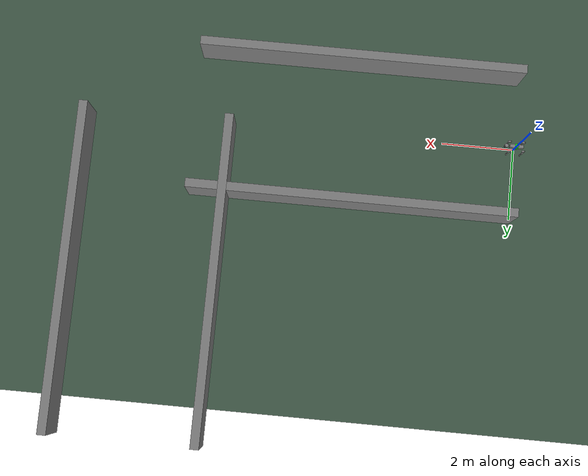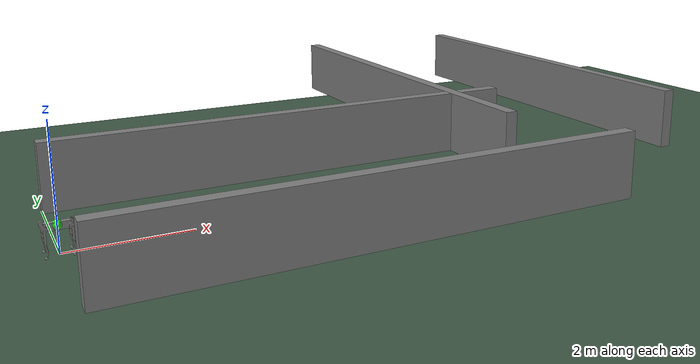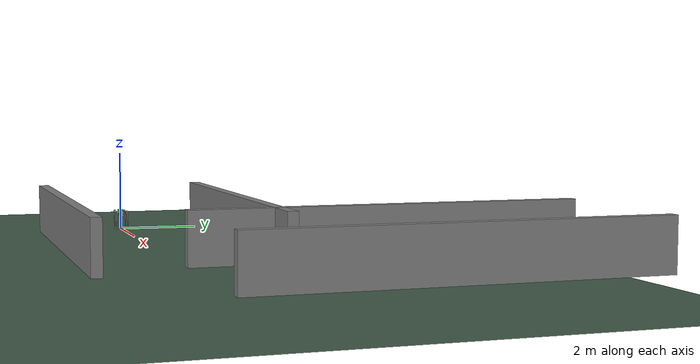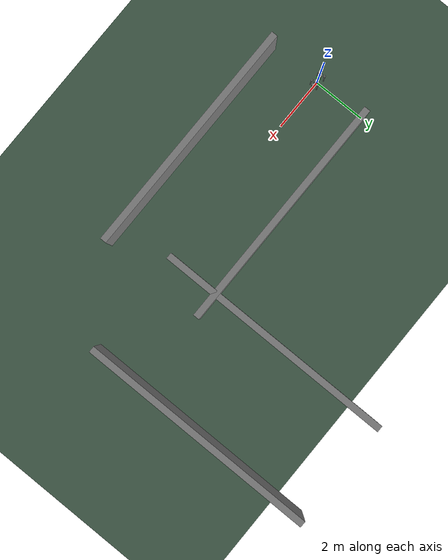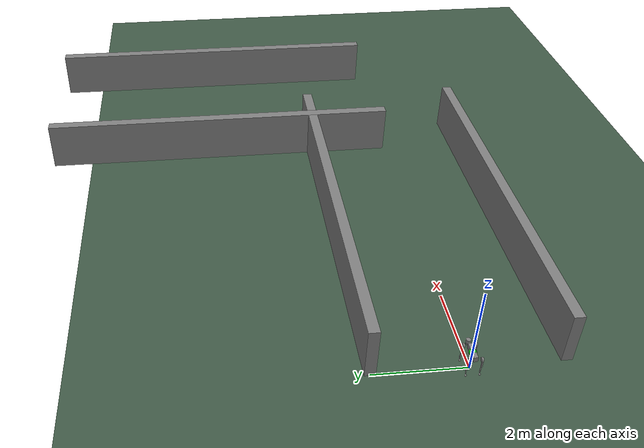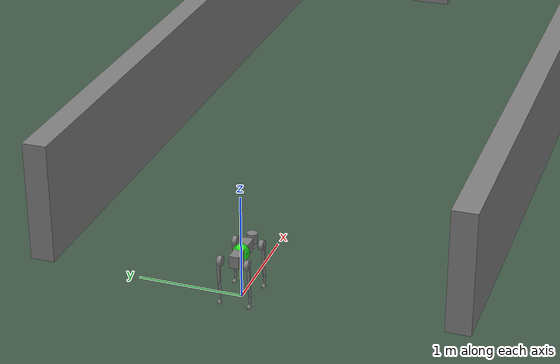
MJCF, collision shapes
<mujoco model="sea-nav winding flat turn">
  <include file="go2.xml"/>
  <option timestep="0.002" gravity="0 0 -9.81"/>
  <statistic center="10 0 0.5" extent="12"/>
  <visual>
    <headlight diffuse="0.6 0.6 0.6" ambient="0.3 0.3 0.3" specular="0.9 0.9 0.9"/>
    <rgba haze="0.15 0.25 0.35 1"/>
    <global azimuth="-130" elevation="-20"/>
  </visual>
  <asset>
    <texture type="skybox" builtin="gradient" rgb1="0.4 0.6 0.8" rgb2="0.1 0.1 0.1" width="512" height="3072"/>
    <material name="floor" rgba="0.25 0.35 0.28 1"/>
  </asset>
  <worldbody>
    <light pos="4 -4 8" dir="-0.2 0.2 -1" directional="true" diffuse="0.8 0.8 0.8" specular="0.4 0.4 0.4"/>
    <site name="winding_spawn" pos="0 0 .45" size=".08" rgba="0.1 1 0.1 0.8"/>
    <geom name="floor" type="plane" size="30 8 .05" material="floor"/>

    <!-- Geometry matches course_winding.xml; only the hfield is removed. -->
    <geom name="wall_h_left" type="box" pos="4.5 2.0 .6" size="4.5 .12 .6"/>
    <geom name="wall_h_right" type="box" pos="4.5 -2.0 .6" size="4.5 .12 .6"/>
    <geom name="wall_v_left" type="box" pos="8.0 4.5 .6" size=".12 4.5 .6"/>
    <geom name="wall_v_right" type="box" pos="12.0 4.5 .6" size=".12 4.5 .6"/>

  </worldbody>
</mujoco>

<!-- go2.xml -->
<mujoco model="go2">
  <compiler angle="radian" meshdir="assets" autolimits="true"/>

  <option cone="elliptic" impratio="100"/>

  <default>
    <default class="go2">
      <geom friction="0.6" margin="0.001" condim="1"/>
      <joint axis="0 1 0" damping="2" armature="0.01" frictionloss="0.2"/>
      <position kp="25" kv="0.5" ctrlrange="-23.7 23.7"/>
      <default class="abduction">
        <joint axis="1 0 0" range="-1.0472 1.0472"/>
      </default>
      <default class="hip">
        <default class="front_hip">
          <joint range="-1.5708 3.4907"/>
        </default>
        <default class="back_hip">
          <joint range="-0.5236 4.5379"/>
        </default>
      </default>
      <default class="knee">
        <joint range="-2.7227 -0.83776"/>
        <position kp="25" kv="0.5" ctrlrange="-45.43 45.43"/>
      </default>
      <default class="visual">
        <geom type="mesh" contype="0" conaffinity="0" group="2"/>
      </default>
      <default class="collision">
        <geom group="3"/>
        <default class="foot">
          <geom size="0.022" pos="-0.002 0 -0.213" priority="1" solimp="0.015 1 0.022" condim="6"
            friction="0.8 0.02 0.01"/>
        </default>
      </default>
    </default>
  </default>

  <asset>
    <material name="metal" rgba=".9 .95 .95 1"/>
    <material name="black" rgba="0 0 0 1"/>
    <material name="white" rgba="1 1 1 1"/>
    <material name="gray" rgba="0.671705 0.692426 0.774270 1"/>

    <mesh file="base_0.obj"/>
    <mesh file="base_1.obj"/>
    <mesh file="base_2.obj"/>
    <mesh file="base_3.obj"/>
    <mesh file="base_4.obj"/>
    <mesh file="hip_0.obj"/>
    <mesh file="hip_1.obj"/>
    <mesh file="thigh_0.obj"/>
    <mesh file="thigh_1.obj"/>
    <mesh file="thigh_mirror_0.obj"/>
    <mesh file="thigh_mirror_1.obj"/>
    <mesh file="calf_0.obj"/>
    <mesh file="calf_1.obj"/>
    <mesh file="calf_mirror_0.obj"/>
    <mesh file="calf_mirror_1.obj"/>
    <mesh file="foot.obj"/>
  </asset>

  <worldbody>
    <body name="base" pos="0 0 0.445" childclass="go2">
      <inertial pos="0.021112 0 -0.005366" quat="-0.000543471 0.713435 -0.00173769 0.700719" mass="6.921"
        diaginertia="0.107027 0.0980771 0.0244531"/>
      <freejoint/>
      <geom mesh="base_0" material="black" class="visual"/>
      <geom mesh="base_1" material="black" class="visual"/>
      <geom mesh="base_2" material="black" class="visual"/>
      <geom mesh="base_3" material="white" class="visual"/>
      <geom mesh="base_4" material="gray" class="visual"/>
      <geom size="0.1881 0.04675 0.057" type="box" class="collision"/>
      <geom size="0.05 0.045" pos="0.285 0 0.01" type="cylinder" class="collision"/>
      <geom size="0.047" pos="0.293 0 -0.06" class="collision"/>
      <site name="imu" pos="-0.02557 0 0.04232"/>
      <body name="FL_hip" pos="0.1934 0.0465 0">
        <inertial pos="-0.0054 0.00194 -0.000105" quat="0.497014 0.499245 0.505462 0.498237" mass="0.678"
          diaginertia="0.00088403 0.000596003 0.000479967"/>
        <joint name="FL_hip_joint" class="abduction"/>
        <geom mesh="hip_0" material="metal" class="visual"/>
        <geom mesh="hip_1" material="gray" class="visual"/>
        <geom size="0.046 0.02" pos="0 0.08 0" quat="1 1 0 0" type="cylinder" class="collision"/>
        <body name="FL_thigh" pos="0 0.0955 0">
          <inertial pos="-0.00374 -0.0223 -0.0327" quat="0.829533 0.0847635 -0.0200632 0.551623" mass="1.152"
            diaginertia="0.00594973 0.00584149 0.000878787"/>
          <joint name="FL_thigh_joint" class="front_hip"/>
          <geom mesh="thigh_0" material="metal" class="visual"/>
          <geom mesh="thigh_1" material="gray" class="visual"/>
          <geom size="0.1065 0.01225 0.017" pos="0 0 -0.1065" quat="0.707107 0 0.707107 0" type="box" class="collision"/>
          <body name="FL_calf" pos="0 0 -0.213">
            <inertial pos="0.00629595 -0.000622121 -0.141417" quat="0.710672 0.00154099 -0.00450087 0.703508"
              mass="0.241352" diaginertia="0.0014901 0.00146356 5.31397e-05"/>
            <joint name="FL_calf_joint" class="knee"/>
            <geom mesh="calf_0" material="gray" class="visual"/>
            <geom mesh="calf_1" material="black" class="visual"/>
            <geom size="0.012 0.06" pos="0.008 0 -0.06" quat="0.994493 0 -0.104807 0" type="cylinder" class="collision"/>
            <geom size="0.011 0.0325" pos="0.02 0 -0.148" quat="0.999688 0 0.0249974 0" type="cylinder" class="collision"/>
            <geom pos="0 0 -0.213" mesh="foot" class="visual" material="black"/>
            <geom name="FL" class="foot"/>
          </body>
        </body>
      </body>
      <body name="FR_hip" pos="0.1934 -0.0465 0">
        <inertial pos="-0.0054 -0.00194 -0.000105" quat="0.498237 0.505462 0.499245 0.497014" mass="0.678"
          diaginertia="0.00088403 0.000596003 0.000479967"/>
        <joint name="FR_hip_joint" class="abduction"/>
        <geom mesh="hip_0" material="metal" class="visual" quat="4.63268e-05 1 0 0"/>
        <geom mesh="hip_1" material="gray" class="visual" quat="4.63268e-05 1 0 0"/>
        <geom size="0.046 0.02" pos="0 -0.08 0" quat="0.707107 0.707107 0 0" type="cylinder" class="collision"/>
        <body name="FR_thigh" pos="0 -0.0955 0">
          <inertial pos="-0.00374 0.0223 -0.0327" quat="0.551623 -0.0200632 0.0847635 0.829533" mass="1.152"
            diaginertia="0.00594973 0.00584149 0.000878787"/>
          <joint name="FR_thigh_joint" class="front_hip"/>
          <geom mesh="thigh_mirror_0" material="metal" class="visual"/>
          <geom mesh="thigh_mirror_1" material="gray" class="visual"/>
          <geom size="0.1065 0.01225 0.017" pos="0 0 -0.1065" quat="0.707107 0 0.707107 0" type="box" class="collision"/>
          <body name="FR_calf" pos="0 0 -0.213">
            <inertial pos="0.00629595 0.000622121 -0.141417" quat="0.703508 -0.00450087 0.00154099 0.710672"
              mass="0.241352" diaginertia="0.0014901 0.00146356 5.31397e-05"/>
            <joint name="FR_calf_joint" class="knee"/>
            <geom mesh="calf_mirror_0" material="gray" class="visual"/>
            <geom mesh="calf_mirror_1" material="black" class="visual"/>
            <geom size="0.013 0.06" pos="0.01 0 -0.06" quat="0.995004 0 -0.0998334 0" type="cylinder" class="collision"/>
            <geom size="0.011 0.0325" pos="0.02 0 -0.148" quat="0.999688 0 0.0249974 0" type="cylinder" class="collision"/>
            <geom pos="0 0 -0.213" mesh="foot" class="visual" material="black"/>
            <geom name="FR" class="foot"/>
          </body>
        </body>
      </body>
      <body name="RL_hip" pos="-0.1934 0.0465 0">
        <inertial pos="0.0054 0.00194 -0.000105" quat="0.505462 0.498237 0.497014 0.499245" mass="0.678"
          diaginertia="0.00088403 0.000596003 0.000479967"/>
        <joint name="RL_hip_joint" class="abduction"/>
        <geom mesh="hip_0" material="metal" class="visual" quat="4.63268e-05 0 1 0"/>
        <geom mesh="hip_1" material="gray" class="visual" quat="4.63268e-05 0 1 0"/>
        <geom size="0.046 0.02" pos="0 0.08 0" quat="0.707107 0.707107 0 0" type="cylinder" class="collision"/>
        <body name="RL_thigh" pos="0 0.0955 0">
          <inertial pos="-0.00374 -0.0223 -0.0327" quat="0.829533 0.0847635 -0.0200632 0.551623" mass="1.152"
            diaginertia="0.00594973 0.00584149 0.000878787"/>
          <joint name="RL_thigh_joint" class="back_hip"/>
          <geom mesh="thigh_0" material="metal" class="visual"/>
          <geom mesh="thigh_1" material="gray" class="visual"/>
          <geom size="0.1065 0.01225 0.017" pos="0 0 -0.1065" quat="0.707107 0 0.707107 0" type="box" class="collision"/>
          <body name="RL_calf" pos="0 0 -0.213">
            <inertial pos="0.00629595 -0.000622121 -0.141417" quat="0.710672 0.00154099 -0.00450087 0.703508"
              mass="0.241352" diaginertia="0.0014901 0.00146356 5.31397e-05"/>
            <joint name="RL_calf_joint" class="knee"/>
            <geom mesh="calf_0" material="gray" class="visual"/>
            <geom mesh="calf_1" material="black" class="visual"/>
            <geom size="0.013 0.06" pos="0.01 0 -0.06" quat="0.995004 0 -0.0998334 0" type="cylinder" class="collision"/>
            <geom size="0.011 0.0325" pos="0.02 0 -0.148" quat="0.999688 0 0.0249974 0" type="cylinder" class="collision"/>
            <geom pos="0 0 -0.213" mesh="foot" class="visual" material="black"/>
            <geom name="RL" class="foot"/>
          </body>
        </body>
      </body>
      <body name="RR_hip" pos="-0.1934 -0.0465 0">
        <inertial pos="0.0054 -0.00194 -0.000105" quat="0.499245 0.497014 0.498237 0.505462" mass="0.678"
          diaginertia="0.00088403 0.000596003 0.000479967"/>
        <joint name="RR_hip_joint" class="abduction"/>
        <geom mesh="hip_0" material="metal" class="visual" quat="2.14617e-09 4.63268e-05 4.63268e-05 -1"/>
        <geom mesh="hip_1" material="gray" class="visual" quat="2.14617e-09 4.63268e-05 4.63268e-05 -1"/>
        <geom size="0.046 0.02" pos="0 -0.08 0" quat="0.707107 0.707107 0 0" type="cylinder" class="collision"/>
        <body name="RR_thigh" pos="0 -0.0955 0">
          <inertial pos="-0.00374 0.0223 -0.0327" quat="0.551623 -0.0200632 0.0847635 0.829533" mass="1.152"
            diaginertia="0.00594973 0.00584149 0.000878787"/>
          <joint name="RR_thigh_joint" class="back_hip"/>
          <geom mesh="thigh_mirror_0" material="metal" class="visual"/>
          <geom mesh="thigh_mirror_1" material="gray" class="visual"/>
          <geom size="0.1065 0.01225 0.017" pos="0 0 -0.1065" quat="0.707107 0 0.707107 0" type="box" class="collision"/>
          <body name="RR_calf" pos="0 0 -0.213">
            <inertial pos="0.00629595 0.000622121 -0.141417" quat="0.703508 -0.00450087 0.00154099 0.710672"
              mass="0.241352" diaginertia="0.0014901 0.00146356 5.31397e-05"/>
            <joint name="RR_calf_joint" class="knee"/>
            <geom mesh="calf_mirror_0" material="gray" class="visual"/>
            <geom mesh="calf_mirror_1" material="black" class="visual"/>
            <geom size="0.013 0.06" pos="0.01 0 -0.06" quat="0.995004 0 -0.0998334 0" type="cylinder" class="collision"/>
            <geom size="0.011 0.0325" pos="0.02 0 -0.148" quat="0.999688 0 0.0249974 0" type="cylinder" class="collision"/>
            <geom pos="0 0 -0.213" mesh="foot" class="visual" material="black"/>
            <geom name="RR" class="foot"/>
          </body>
        </body>
      </body>
    </body>
  </worldbody>

  <actuator>
    <position class="abduction" name="FL_hip" joint="FL_hip_joint"/>
    <position class="hip" name="FL_thigh" joint="FL_thigh_joint"/>
    <position class="knee" name="FL_calf" joint="FL_calf_joint"/>
    <position class="abduction" name="FR_hip" joint="FR_hip_joint"/>
    <position class="hip" name="FR_thigh" joint="FR_thigh_joint"/>
    <position class="knee" name="FR_calf" joint="FR_calf_joint"/>
    <position class="abduction" name="RL_hip" joint="RL_hip_joint"/>
    <position class="hip" name="RL_thigh" joint="RL_thigh_joint"/>
    <position class="knee" name="RL_calf" joint="RL_calf_joint"/>
    <position class="abduction" name="RR_hip" joint="RR_hip_joint"/>
    <position class="hip" name="RR_thigh" joint="RR_thigh_joint"/>
    <position class="knee" name="RR_calf" joint="RR_calf_joint"/>
  </actuator>

  <sensor>
        <gyro site="imu" name="gyro" />
        <accelerometer site="imu" name="accelerometer" />
        <velocimeter site="imu" name="local_linvel" />
        <framepos objtype="site" objname="imu" name="torso_pos" />
        <framezaxis objtype="site" objname="imu" name="gravity_vector" />
        <framexaxis objtype="site" objname="imu" name="torso_x_axis_vec" />
        <framexaxis objtype="site" objname="imu" name="torso_y_axis_vec" />
        <framequat objtype="site" objname="imu" name="orientation" />
        <framelinvel objtype="site" objname="imu" name="global_linvel" />
  </sensor>

  <keyframe>
    <key name="home" qpos="0 0 0.27 1 0 0 0 0 0.9 -1.8 0 0.9 -1.8 0 0.9 -1.8 0 0.9 -1.8"
      ctrl="0 0.9 -1.8 0 0.9 -1.8 0 0.9 -1.8 0 0.9 -1.8"/>
  </keyframe>
</mujoco>
